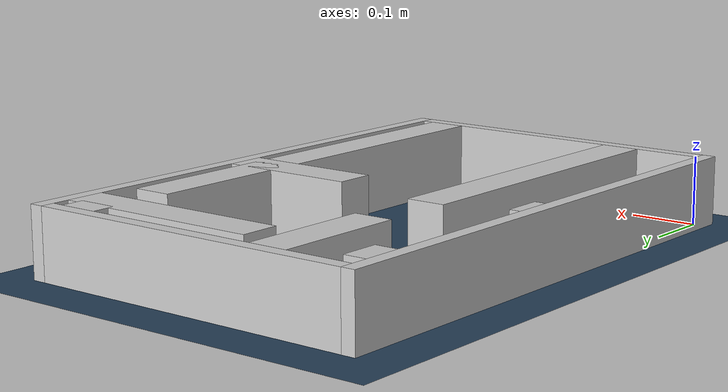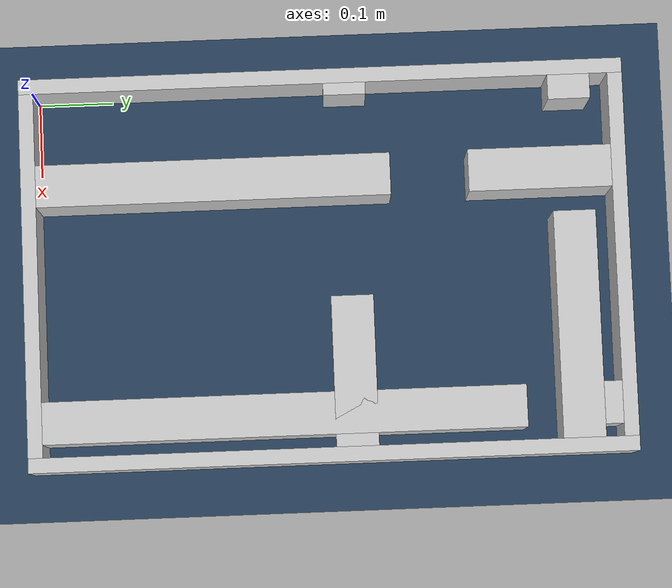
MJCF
<?xml version="1.0" ?>
<mujoco model="generated_real_template">
  <compiler angle="degree"/>
  <option timestep="0.002" integrator="implicitfast" iterations="100" cone="elliptic"/>
  <default>
    <geom density="1"/>
  </default>
  <asset>
    <texture builtin="gradient" height="3072" rgb1="0.3 0.5 0.7" rgb2="0 0 0" type="skybox" width="512"/>
    <texture builtin="checker" height="300" mark="edge" markrgb="0.8 0.8 0.8" name="groundplane" rgb1="0.2 0.3 0.4" rgb2="0.1 0.2 0.3" type="2d" width="300"/>
    <material name="groundplane" reflectance="0.2" texrepeat="5 5" texture="groundplane" texuniform="true"/>
  </asset>
  <worldbody>
    <light dir="0 0 -1" directional="true" pos="0 0 1.5"/>
    <geom name="floor" type="plane" condim="4" friction="0.5 0.005 0.001" material="groundplane" size="0 0 0.05"/>
    <body name="walls">
      <geom name="wall_boundary_left" type="box" condim="4" friction="1.0 0.005 0.0001" rgba="0.8 0.8 0.8 1" pos="-0.010000 0.387500 0.050000" euler="0 0 0.000000" size="0.010000 0.407500 0.050000"/>
      <geom name="wall_boundary_right" type="box" condim="4" friction="1.0 0.005 0.0001" rgba="0.8 0.8 0.8 1" pos="0.500000 0.387500 0.050000" euler="0 0 0.000000" size="0.010000 0.407500 0.050000"/>
      <geom name="wall_boundary_bottom" type="box" condim="4" friction="1.0 0.005 0.0001" rgba="0.8 0.8 0.8 1" pos="0.245000 -0.010000 0.050000" euler="0 0 0.000000" size="0.245000 0.010000 0.050000"/>
      <geom name="wall_boundary_top" type="box" condim="4" friction="1.0 0.005 0.0001" rgba="0.8 0.8 0.8 1" pos="0.245000 0.785000 0.050000" euler="0 0 0.000000" size="0.245000 0.010000 0.050000"/>
      <geom name="wall_inner_1_1" type="box" condim="4" friction="1.0 0.005 0.0001" rgba="0.8 0.8 0.8 1" pos="0.016632 0.722255 0.050000" euler="0 0 0.000000" size="0.016632 0.028500 0.050000"/>
      <geom name="wall_inner_1_2" type="box" condim="4" friction="1.0 0.005 0.0001" rgba="0.8 0.8 0.8 1" pos="0.337486 0.722255 0.050000" euler="0 0 0.000000" size="0.152514 0.028500 0.050000"/>
      <geom name="wall_inner_2_1" type="box" condim="4" friction="1.0 0.005 0.0001" rgba="0.8 0.8 0.8 1" pos="0.125785 0.238633 0.050000" euler="0 0 90.000000" size="0.238633 0.028500 0.050000"/>
      <geom name="wall_inner_2_2" type="box" condim="4" friction="1.0 0.005 0.0001" rgba="0.8 0.8 0.8 1" pos="0.125785 0.678644 0.050000" euler="0 0 90.000000" size="0.096356 0.028500 0.050000"/>
      <geom name="wall_inner_3_1" type="box" condim="4" friction="1.0 0.005 0.0001" rgba="0.8 0.8 0.8 1" pos="0.008170 0.419669 0.050000" euler="0 0 0.000000" size="0.008170 0.028500 0.050000"/>
      <geom name="wall_inner_3_2" type="box" condim="4" friction="1.0 0.005 0.0001" rgba="0.8 0.8 0.8 1" pos="0.389090 0.419669 0.050000" euler="0 0 0.000000" size="0.100910 0.028500 0.050000"/>
      <geom name="wall_inner_4_1" type="box" condim="4" friction="1.0 0.005 0.0001" rgba="0.8 0.8 0.8 1" pos="0.444402 0.323739 0.050000" euler="0 0 90.000000" size="0.323739 0.028500 0.050000"/>
      <geom name="wall_inner_4_2" type="box" condim="4" friction="1.0 0.005 0.0001" rgba="0.8 0.8 0.8 1" pos="0.444402 0.758188 0.050000" euler="0 0 90.000000" size="0.016812 0.028500 0.050000"/>
    </body>
  </worldbody>
</mujoco>
